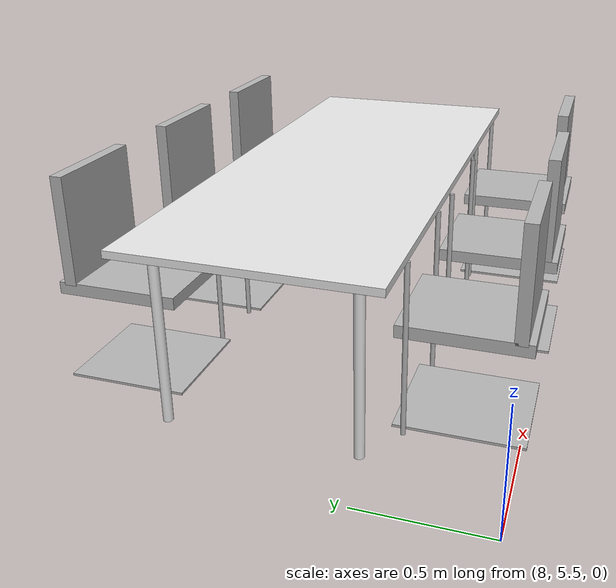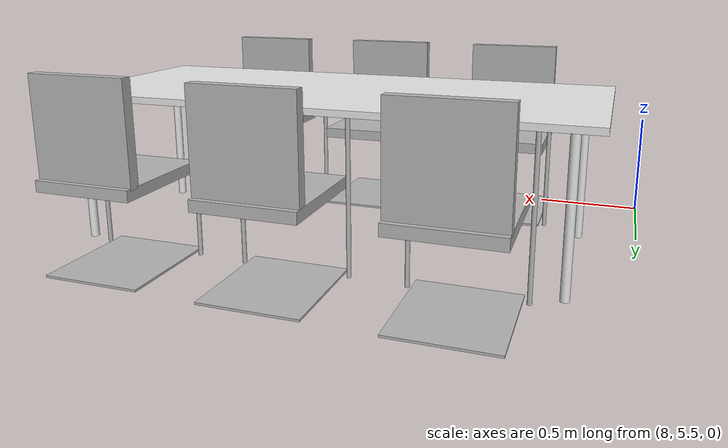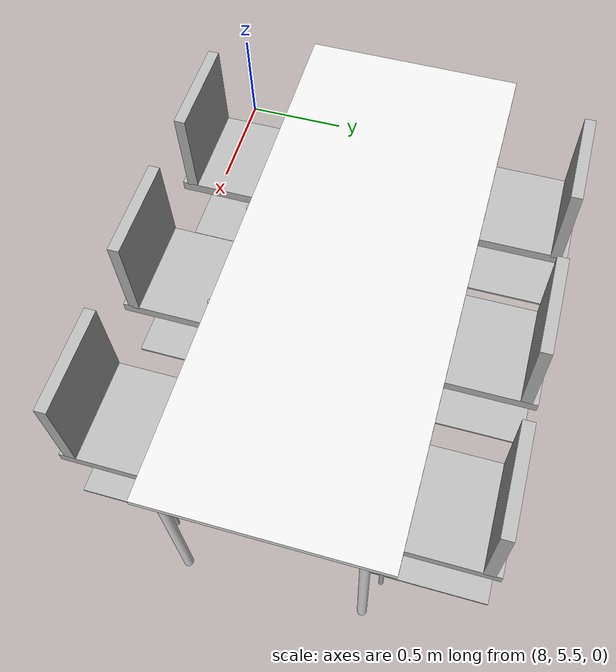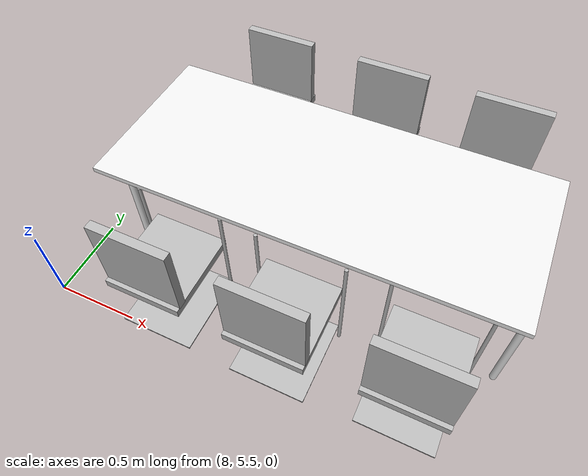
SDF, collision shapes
<sdf version="1.6">
 <model name="erica">
  <model name="table1_chair_clone">
   <model name="h_chair">
    <link name="link_0">
     <inertial>
      <mass>1</mass>
      <inertia>
       <ixx>0.166667</ixx>
       <ixy>0</ixy>
       <ixz>0</ixz>
       <iyy>0.166667</iyy>
       <iyz>0</iyz>
       <izz>0.166667</izz>
      </inertia>
     </inertial>
     <visual name="visual">
      <geometry>
       <mesh><uri>model://erica/elements/h_chair/meshes/chair.dae</uri><scale>1 1 1</scale></mesh>
      </geometry>
     </visual>
     <collision name="collision_4">
      <pose>0 0 0.41 0 -0 0</pose>
      <geometry><box><size>0.5 0.45 0.05</size></box></geometry>
      <surface>
       <friction>
        <ode><mu>1</mu><mu2>1</mu2><fdir1>0 0 0</fdir1><slip1>0</slip1><slip2>0</slip2></ode>
        <torsional>
         <coefficient>1</coefficient>
         <patch_radius>0</patch_radius>
         <surface_radius>0</surface_radius>
         <use_patch_radius>1</use_patch_radius>
         <ode><slip>0</slip></ode>
        </torsional>
       </friction>
       <bounce><restitution_coefficient>0</restitution_coefficient><threshold>1e+06</threshold></bounce>
       <contact>
        <collide_without_contact>0</collide_without_contact>
        <collide_without_contact_bitmask>1</collide_without_contact_bitmask>
        <collide_bitmask>1</collide_bitmask>
        <ode>
         <soft_cfm>0</soft_cfm>
         <soft_erp>0.2</soft_erp>
         <kp>1e+13</kp>
         <kd>1</kd>
         <max_vel>0.01</max_vel>
         <min_depth>0</min_depth>
        </ode>
        <bullet>
         <split_impulse>1</split_impulse>
         <split_impulse_penetration_threshold>-0.01</split_impulse_penetration_threshold>
         <soft_cfm>0</soft_cfm>
         <soft_erp>0.2</soft_erp>
         <kp>1e+13</kp>
         <kd>1</kd>
        </bullet>
       </contact>
      </surface>
     </collision>
     <collision name="collision_3">
      <pose>0 0 0.01 0 -0 0</pose>
      <geometry><box><size>0.5 0.45 0.01</size></box></geometry>
      <surface>
       <friction>
        <ode><mu>1</mu><mu2>1</mu2><fdir1>0 0 0</fdir1><slip1>0</slip1><slip2>0</slip2></ode>
        <torsional>
         <coefficient>1</coefficient>
         <patch_radius>0</patch_radius>
         <surface_radius>0</surface_radius>
         <use_patch_radius>1</use_patch_radius>
         <ode><slip>0</slip></ode>
        </torsional>
       </friction>
       <bounce><restitution_coefficient>0</restitution_coefficient><threshold>1e+06</threshold></bounce>
       <contact>
        <collide_without_contact>0</collide_without_contact>
        <collide_without_contact_bitmask>1</collide_without_contact_bitmask>
        <collide_bitmask>1</collide_bitmask>
        <ode>
         <soft_cfm>0</soft_cfm>
         <soft_erp>0.2</soft_erp>
         <kp>1e+13</kp>
         <kd>1</kd>
         <max_vel>0.01</max_vel>
         <min_depth>0</min_depth>
        </ode>
        <bullet>
         <split_impulse>1</split_impulse>
         <split_impulse_penetration_threshold>-0.01</split_impulse_penetration_threshold>
         <soft_cfm>0</soft_cfm>
         <soft_erp>0.2</soft_erp>
         <kp>1e+13</kp>
         <kd>1</kd>
        </bullet>
       </contact>
      </surface>
     </collision>
     <collision name="collision_5">
      <pose>-0.2 0 0.65 0 -0 0</pose>
      <geometry><box><size>0.05 0.45 0.45</size></box></geometry>
      <surface>
       <friction>
        <ode><mu>1</mu><mu2>1</mu2><fdir1>0 0 0</fdir1><slip1>0</slip1><slip2>0</slip2></ode>
        <torsional>
         <coefficient>1</coefficient>
         <patch_radius>0</patch_radius>
         <surface_radius>0</surface_radius>
         <use_patch_radius>1</use_patch_radius>
         <ode><slip>0</slip></ode>
        </torsional>
       </friction>
       <bounce><restitution_coefficient>0</restitution_coefficient><threshold>1e+06</threshold></bounce>
       <contact>
        <collide_without_contact>0</collide_without_contact>
        <collide_without_contact_bitmask>1</collide_without_contact_bitmask>
        <collide_bitmask>1</collide_bitmask>
        <ode>
         <soft_cfm>0</soft_cfm>
         <soft_erp>0.2</soft_erp>
         <kp>1e+13</kp>
         <kd>1</kd>
         <max_vel>0.01</max_vel>
         <min_depth>0</min_depth>
        </ode>
        <bullet>
         <split_impulse>1</split_impulse>
         <split_impulse_penetration_threshold>-0.01</split_impulse_penetration_threshold>
         <soft_cfm>0</soft_cfm>
         <soft_erp>0.2</soft_erp>
         <kp>1e+13</kp>
         <kd>1</kd>
        </bullet>
       </contact>
      </surface>
     </collision>
     <collision name="collision_6">
      <pose>0.2 -0.25 0.35 0 -0 0</pose>
      <geometry><cylinder><radius>0.01</radius><length>0.7</length></cylinder></geometry>
      <surface>
       <friction>
        <ode><mu>1</mu><mu2>1</mu2><fdir1>0 0 0</fdir1><slip1>0</slip1><slip2>0</slip2></ode>
        <torsional>
         <coefficient>1</coefficient>
         <patch_radius>0</patch_radius>
         <surface_radius>0</surface_radius>
         <use_patch_radius>1</use_patch_radius>
         <ode><slip>0</slip></ode>
        </torsional>
       </friction>
       <bounce><restitution_coefficient>0</restitution_coefficient><threshold>1e+06</threshold></bounce>
       <contact>
        <collide_without_contact>0</collide_without_contact>
        <collide_without_contact_bitmask>1</collide_without_contact_bitmask>
        <collide_bitmask>1</collide_bitmask>
        <ode>
         <soft_cfm>0</soft_cfm>
         <soft_erp>0.2</soft_erp>
         <kp>1e+13</kp>
         <kd>1</kd>
         <max_vel>0.01</max_vel>
         <min_depth>0</min_depth>
        </ode>
        <bullet>
         <split_impulse>1</split_impulse>
         <split_impulse_penetration_threshold>-0.01</split_impulse_penetration_threshold>
         <soft_cfm>0</soft_cfm>
         <soft_erp>0.2</soft_erp>
         <kp>1e+13</kp>
         <kd>1</kd>
        </bullet>
       </contact>
      </surface>
     </collision>
     <collision name="collision_7">
      <pose>0.2 0.25 0.35 0 -0 0</pose>
      <geometry><cylinder><radius>0.01</radius><length>0.7</length></cylinder></geometry>
      <surface>
       <friction>
        <ode><mu>1</mu><mu2>1</mu2><fdir1>0 0 0</fdir1><slip1>0</slip1><slip2>0</slip2></ode>
        <torsional>
         <coefficient>1</coefficient>
         <patch_radius>0</patch_radius>
         <surface_radius>0</surface_radius>
         <use_patch_radius>1</use_patch_radius>
         <ode><slip>0</slip></ode>
        </torsional>
       </friction>
       <bounce><restitution_coefficient>0</restitution_coefficient><threshold>1e+06</threshold></bounce>
       <contact>
        <collide_without_contact>0</collide_without_contact>
        <collide_without_contact_bitmask>1</collide_without_contact_bitmask>
        <collide_bitmask>1</collide_bitmask>
        <ode>
         <soft_cfm>0</soft_cfm>
         <soft_erp>0.2</soft_erp>
         <kp>1e+13</kp>
         <kd>1</kd>
         <max_vel>0.01</max_vel>
         <min_depth>0</min_depth>
        </ode>
        <bullet>
         <split_impulse>1</split_impulse>
         <split_impulse_penetration_threshold>-0.01</split_impulse_penetration_threshold>
         <soft_cfm>0</soft_cfm>
         <soft_erp>0.2</soft_erp>
         <kp>1e+13</kp>
         <kd>1</kd>
        </bullet>
       </contact>
      </surface>
     </collision>
    </link>
    <static>1</static>
    <pose>-0.65015 0.677818 0 0 -0 0</pose>
   </model>
   <model name="h_chair_clone">
    <link name="link_0">
     <inertial>
      <mass>1</mass>
      <inertia>
       <ixx>0.166667</ixx>
       <ixy>0</ixy>
       <ixz>0</ixz>
       <iyy>0.166667</iyy>
       <iyz>0</iyz>
       <izz>0.166667</izz>
      </inertia>
     </inertial>
     <visual name="visual">
      <geometry>
       <mesh><uri>model://erica/elements/h_chair/meshes/chair.dae</uri><scale>1 1 1</scale></mesh>
      </geometry>
     </visual>
     <collision name="collision_4">
      <pose>0 0 0.41 0 -0 0</pose>
      <geometry><box><size>0.5 0.45 0.05</size></box></geometry>
      <surface>
       <friction>
        <ode><mu>1</mu><mu2>1</mu2><fdir1>0 0 0</fdir1><slip1>0</slip1><slip2>0</slip2></ode>
        <torsional>
         <coefficient>1</coefficient>
         <patch_radius>0</patch_radius>
         <surface_radius>0</surface_radius>
         <use_patch_radius>1</use_patch_radius>
         <ode><slip>0</slip></ode>
        </torsional>
       </friction>
       <bounce><restitution_coefficient>0</restitution_coefficient><threshold>1e+06</threshold></bounce>
       <contact>
        <collide_without_contact>0</collide_without_contact>
        <collide_without_contact_bitmask>1</collide_without_contact_bitmask>
        <collide_bitmask>1</collide_bitmask>
        <ode>
         <soft_cfm>0</soft_cfm>
         <soft_erp>0.2</soft_erp>
         <kp>1e+13</kp>
         <kd>1</kd>
         <max_vel>0.01</max_vel>
         <min_depth>0</min_depth>
        </ode>
        <bullet>
         <split_impulse>1</split_impulse>
         <split_impulse_penetration_threshold>-0.01</split_impulse_penetration_threshold>
         <soft_cfm>0</soft_cfm>
         <soft_erp>0.2</soft_erp>
         <kp>1e+13</kp>
         <kd>1</kd>
        </bullet>
       </contact>
      </surface>
     </collision>
     <collision name="collision_3">
      <pose>0 0 0.01 0 -0 0</pose>
      <geometry><box><size>0.5 0.45 0.01</size></box></geometry>
      <surface>
       <friction>
        <ode><mu>1</mu><mu2>1</mu2><fdir1>0 0 0</fdir1><slip1>0</slip1><slip2>0</slip2></ode>
        <torsional>
         <coefficient>1</coefficient>
         <patch_radius>0</patch_radius>
         <surface_radius>0</surface_radius>
         <use_patch_radius>1</use_patch_radius>
         <ode><slip>0</slip></ode>
        </torsional>
       </friction>
       <bounce><restitution_coefficient>0</restitution_coefficient><threshold>1e+06</threshold></bounce>
       <contact>
        <collide_without_contact>0</collide_without_contact>
        <collide_without_contact_bitmask>1</collide_without_contact_bitmask>
        <collide_bitmask>1</collide_bitmask>
        <ode>
         <soft_cfm>0</soft_cfm>
         <soft_erp>0.2</soft_erp>
         <kp>1e+13</kp>
         <kd>1</kd>
         <max_vel>0.01</max_vel>
         <min_depth>0</min_depth>
        </ode>
        <bullet>
         <split_impulse>1</split_impulse>
         <split_impulse_penetration_threshold>-0.01</split_impulse_penetration_threshold>
         <soft_cfm>0</soft_cfm>
         <soft_erp>0.2</soft_erp>
         <kp>1e+13</kp>
         <kd>1</kd>
        </bullet>
       </contact>
      </surface>
     </collision>
     <collision name="collision_5">
      <pose>-0.2 0 0.65 0 -0 0</pose>
      <geometry><box><size>0.05 0.45 0.45</size></box></geometry>
      <surface>
       <friction>
        <ode><mu>1</mu><mu2>1</mu2><fdir1>0 0 0</fdir1><slip1>0</slip1><slip2>0</slip2></ode>
        <torsional>
         <coefficient>1</coefficient>
         <patch_radius>0</patch_radius>
         <surface_radius>0</surface_radius>
         <use_patch_radius>1</use_patch_radius>
         <ode><slip>0</slip></ode>
        </torsional>
       </friction>
       <bounce><restitution_coefficient>0</restitution_coefficient><threshold>1e+06</threshold></bounce>
       <contact>
        <collide_without_contact>0</collide_without_contact>
        <collide_without_contact_bitmask>1</collide_without_contact_bitmask>
        <collide_bitmask>1</collide_bitmask>
        <ode>
         <soft_cfm>0</soft_cfm>
         <soft_erp>0.2</soft_erp>
         <kp>1e+13</kp>
         <kd>1</kd>
         <max_vel>0.01</max_vel>
         <min_depth>0</min_depth>
        </ode>
        <bullet>
         <split_impulse>1</split_impulse>
         <split_impulse_penetration_threshold>-0.01</split_impulse_penetration_threshold>
         <soft_cfm>0</soft_cfm>
         <soft_erp>0.2</soft_erp>
         <kp>1e+13</kp>
         <kd>1</kd>
        </bullet>
       </contact>
      </surface>
     </collision>
     <collision name="collision_6">
      <pose>0.2 -0.25 0.35 0 -0 0</pose>
      <geometry><cylinder><radius>0.01</radius><length>0.7</length></cylinder></geometry>
      <surface>
       <friction>
        <ode><mu>1</mu><mu2>1</mu2><fdir1>0 0 0</fdir1><slip1>0</slip1><slip2>0</slip2></ode>
        <torsional>
         <coefficient>1</coefficient>
         <patch_radius>0</patch_radius>
         <surface_radius>0</surface_radius>
         <use_patch_radius>1</use_patch_radius>
         <ode><slip>0</slip></ode>
        </torsional>
       </friction>
       <bounce><restitution_coefficient>0</restitution_coefficient><threshold>1e+06</threshold></bounce>
       <contact>
        <collide_without_contact>0</collide_without_contact>
        <collide_without_contact_bitmask>1</collide_without_contact_bitmask>
        <collide_bitmask>1</collide_bitmask>
        <ode>
         <soft_cfm>0</soft_cfm>
         <soft_erp>0.2</soft_erp>
         <kp>1e+13</kp>
         <kd>1</kd>
         <max_vel>0.01</max_vel>
         <min_depth>0</min_depth>
        </ode>
        <bullet>
         <split_impulse>1</split_impulse>
         <split_impulse_penetration_threshold>-0.01</split_impulse_penetration_threshold>
         <soft_cfm>0</soft_cfm>
         <soft_erp>0.2</soft_erp>
         <kp>1e+13</kp>
         <kd>1</kd>
        </bullet>
       </contact>
      </surface>
     </collision>
     <collision name="collision_7">
      <pose>0.2 0.25 0.35 0 -0 0</pose>
      <geometry><cylinder><radius>0.01</radius><length>0.7</length></cylinder></geometry>
      <surface>
       <friction>
        <ode><mu>1</mu><mu2>1</mu2><fdir1>0 0 0</fdir1><slip1>0</slip1><slip2>0</slip2></ode>
        <torsional>
         <coefficient>1</coefficient>
         <patch_radius>0</patch_radius>
         <surface_radius>0</surface_radius>
         <use_patch_radius>1</use_patch_radius>
         <ode><slip>0</slip></ode>
        </torsional>
       </friction>
       <bounce><restitution_coefficient>0</restitution_coefficient><threshold>1e+06</threshold></bounce>
       <contact>
        <collide_without_contact>0</collide_without_contact>
        <collide_without_contact_bitmask>1</collide_without_contact_bitmask>
        <collide_bitmask>1</collide_bitmask>
        <ode>
         <soft_cfm>0</soft_cfm>
         <soft_erp>0.2</soft_erp>
         <kp>1e+13</kp>
         <kd>1</kd>
         <max_vel>0.01</max_vel>
         <min_depth>0</min_depth>
        </ode>
        <bullet>
         <split_impulse>1</split_impulse>
         <split_impulse_penetration_threshold>-0.01</split_impulse_penetration_threshold>
         <soft_cfm>0</soft_cfm>
         <soft_erp>0.2</soft_erp>
         <kp>1e+13</kp>
         <kd>1</kd>
        </bullet>
       </contact>
      </surface>
     </collision>
    </link>
    <static>1</static>
    <pose>-0.668032 -0.060178 0 0 -0 0</pose>
   </model>
   <model name="h_chair_clone_0">
    <link name="link_0">
     <inertial>
      <mass>1</mass>
      <inertia>
       <ixx>0.166667</ixx>
       <ixy>0</ixy>
       <ixz>0</ixz>
       <iyy>0.166667</iyy>
       <iyz>0</iyz>
       <izz>0.166667</izz>
      </inertia>
     </inertial>
     <visual name="visual">
      <geometry>
       <mesh><uri>model://erica/elements/h_chair/meshes/chair.dae</uri><scale>1 1 1</scale></mesh>
      </geometry>
     </visual>
     <collision name="collision_4">
      <pose>0 0 0.41 0 -0 0</pose>
      <geometry><box><size>0.5 0.45 0.05</size></box></geometry>
      <surface>
       <friction>
        <ode><mu>1</mu><mu2>1</mu2><fdir1>0 0 0</fdir1><slip1>0</slip1><slip2>0</slip2></ode>
        <torsional>
         <coefficient>1</coefficient>
         <patch_radius>0</patch_radius>
         <surface_radius>0</surface_radius>
         <use_patch_radius>1</use_patch_radius>
         <ode><slip>0</slip></ode>
        </torsional>
       </friction>
       <bounce><restitution_coefficient>0</restitution_coefficient><threshold>1e+06</threshold></bounce>
       <contact>
        <collide_without_contact>0</collide_without_contact>
        <collide_without_contact_bitmask>1</collide_without_contact_bitmask>
        <collide_bitmask>1</collide_bitmask>
        <ode>
         <soft_cfm>0</soft_cfm>
         <soft_erp>0.2</soft_erp>
         <kp>1e+13</kp>
         <kd>1</kd>
         <max_vel>0.01</max_vel>
         <min_depth>0</min_depth>
        </ode>
        <bullet>
         <split_impulse>1</split_impulse>
         <split_impulse_penetration_threshold>-0.01</split_impulse_penetration_threshold>
         <soft_cfm>0</soft_cfm>
         <soft_erp>0.2</soft_erp>
         <kp>1e+13</kp>
         <kd>1</kd>
        </bullet>
       </contact>
      </surface>
     </collision>
     <collision name="collision_3">
      <pose>0 0 0.01 0 -0 0</pose>
      <geometry><box><size>0.5 0.45 0.01</size></box></geometry>
      <surface>
       <friction>
        <ode><mu>1</mu><mu2>1</mu2><fdir1>0 0 0</fdir1><slip1>0</slip1><slip2>0</slip2></ode>
        <torsional>
         <coefficient>1</coefficient>
         <patch_radius>0</patch_radius>
         <surface_radius>0</surface_radius>
         <use_patch_radius>1</use_patch_radius>
         <ode><slip>0</slip></ode>
        </torsional>
       </friction>
       <bounce><restitution_coefficient>0</restitution_coefficient><threshold>1e+06</threshold></bounce>
       <contact>
        <collide_without_contact>0</collide_without_contact>
        <collide_without_contact_bitmask>1</collide_without_contact_bitmask>
        <collide_bitmask>1</collide_bitmask>
        <ode>
         <soft_cfm>0</soft_cfm>
         <soft_erp>0.2</soft_erp>
         <kp>1e+13</kp>
         <kd>1</kd>
         <max_vel>0.01</max_vel>
         <min_depth>0</min_depth>
        </ode>
        <bullet>
         <split_impulse>1</split_impulse>
         <split_impulse_penetration_threshold>-0.01</split_impulse_penetration_threshold>
         <soft_cfm>0</soft_cfm>
         <soft_erp>0.2</soft_erp>
         <kp>1e+13</kp>
         <kd>1</kd>
        </bullet>
       </contact>
      </surface>
     </collision>
     <collision name="collision_5">
      <pose>-0.2 0 0.65 0 -0 0</pose>
      <geometry><box><size>0.05 0.45 0.45</size></box></geometry>
      <surface>
       <friction>
        <ode><mu>1</mu><mu2>1</mu2><fdir1>0 0 0</fdir1><slip1>0</slip1><slip2>0</slip2></ode>
        <torsional>
         <coefficient>1</coefficient>
         <patch_radius>0</patch_radius>
         <surface_radius>0</surface_radius>
         <use_patch_radius>1</use_patch_radius>
         <ode><slip>0</slip></ode>
        </torsional>
       </friction>
       <bounce><restitution_coefficient>0</restitution_coefficient><threshold>1e+06</threshold></bounce>
       <contact>
        <collide_without_contact>0</collide_without_contact>
        <collide_without_contact_bitmask>1</collide_without_contact_bitmask>
        <collide_bitmask>1</collide_bitmask>
        <ode>
         <soft_cfm>0</soft_cfm>
         <soft_erp>0.2</soft_erp>
         <kp>1e+13</kp>
         <kd>1</kd>
         <max_vel>0.01</max_vel>
         <min_depth>0</min_depth>
        </ode>
        <bullet>
         <split_impulse>1</split_impulse>
         <split_impulse_penetration_threshold>-0.01</split_impulse_penetration_threshold>
         <soft_cfm>0</soft_cfm>
         <soft_erp>0.2</soft_erp>
         <kp>1e+13</kp>
         <kd>1</kd>
        </bullet>
       </contact>
      </surface>
     </collision>
     <collision name="collision_6">
      <pose>0.2 -0.25 0.35 0 -0 0</pose>
      <geometry><cylinder><radius>0.01</radius><length>0.7</length></cylinder></geometry>
      <surface>
       <friction>
        <ode><mu>1</mu><mu2>1</mu2><fdir1>0 0 0</fdir1><slip1>0</slip1><slip2>0</slip2></ode>
        <torsional>
         <coefficient>1</coefficient>
         <patch_radius>0</patch_radius>
         <surface_radius>0</surface_radius>
         <use_patch_radius>1</use_patch_radius>
         <ode><slip>0</slip></ode>
        </torsional>
       </friction>
       <bounce><restitution_coefficient>0</restitution_coefficient><threshold>1e+06</threshold></bounce>
       <contact>
        <collide_without_contact>0</collide_without_contact>
        <collide_without_contact_bitmask>1</collide_without_contact_bitmask>
        <collide_bitmask>1</collide_bitmask>
        <ode>
         <soft_cfm>0</soft_cfm>
         <soft_erp>0.2</soft_erp>
         <kp>1e+13</kp>
         <kd>1</kd>
         <max_vel>0.01</max_vel>
         <min_depth>0</min_depth>
        </ode>
        <bullet>
         <split_impulse>1</split_impulse>
         <split_impulse_penetration_threshold>-0.01</split_impulse_penetration_threshold>
         <soft_cfm>0</soft_cfm>
         <soft_erp>0.2</soft_erp>
         <kp>1e+13</kp>
         <kd>1</kd>
        </bullet>
       </contact>
      </surface>
     </collision>
     <collision name="collision_7">
      <pose>0.2 0.25 0.35 0 -0 0</pose>
      <geometry><cylinder><radius>0.01</radius><length>0.7</length></cylinder></geometry>
      <surface>
       <friction>
        <ode><mu>1</mu><mu2>1</mu2><fdir1>0 0 0</fdir1><slip1>0</slip1><slip2>0</slip2></ode>
        <torsional>
         <coefficient>1</coefficient>
         <patch_radius>0</patch_radius>
         <surface_radius>0</surface_radius>
         <use_patch_radius>1</use_patch_radius>
         <ode><slip>0</slip></ode>
        </torsional>
       </friction>
       <bounce><restitution_coefficient>0</restitution_coefficient><threshold>1e+06</threshold></bounce>
       <contact>
        <collide_without_contact>0</collide_without_contact>
        <collide_without_contact_bitmask>1</collide_without_contact_bitmask>
        <collide_bitmask>1</collide_bitmask>
        <ode>
         <soft_cfm>0</soft_cfm>
         <soft_erp>0.2</soft_erp>
         <kp>1e+13</kp>
         <kd>1</kd>
         <max_vel>0.01</max_vel>
         <min_depth>0</min_depth>
        </ode>
        <bullet>
         <split_impulse>1</split_impulse>
         <split_impulse_penetration_threshold>-0.01</split_impulse_penetration_threshold>
         <soft_cfm>0</soft_cfm>
         <soft_erp>0.2</soft_erp>
         <kp>1e+13</kp>
         <kd>1</kd>
        </bullet>
       </contact>
      </surface>
     </collision>
    </link>
    <static>1</static>
    <pose>-0.679941 -0.822301 0 0 -0 0</pose>
   </model>
   <model name="h_chair_clone_1">
    <link name="link_0">
     <inertial>
      <mass>1</mass>
      <inertia>
       <ixx>0.166667</ixx>
       <ixy>0</ixy>
       <ixz>0</ixz>
       <iyy>0.166667</iyy>
       <iyz>0</iyz>
       <izz>0.166667</izz>
      </inertia>
     </inertial>
     <visual name="visual">
      <geometry>
       <mesh><uri>model://erica/elements/h_chair/meshes/chair.dae</uri><scale>1 1 1</scale></mesh>
      </geometry>
     </visual>
     <collision name="collision_4">
      <pose>0 0 0.41 0 -0 0</pose>
      <geometry><box><size>0.5 0.45 0.05</size></box></geometry>
      <surface>
       <friction>
        <ode><mu>1</mu><mu2>1</mu2><fdir1>0 0 0</fdir1><slip1>0</slip1><slip2>0</slip2></ode>
        <torsional>
         <coefficient>1</coefficient>
         <patch_radius>0</patch_radius>
         <surface_radius>0</surface_radius>
         <use_patch_radius>1</use_patch_radius>
         <ode><slip>0</slip></ode>
        </torsional>
       </friction>
       <bounce><restitution_coefficient>0</restitution_coefficient><threshold>1e+06</threshold></bounce>
       <contact>
        <collide_without_contact>0</collide_without_contact>
        <collide_without_contact_bitmask>1</collide_without_contact_bitmask>
        <collide_bitmask>1</collide_bitmask>
        <ode>
         <soft_cfm>0</soft_cfm>
         <soft_erp>0.2</soft_erp>
         <kp>1e+13</kp>
         <kd>1</kd>
         <max_vel>0.01</max_vel>
         <min_depth>0</min_depth>
        </ode>
        <bullet>
         <split_impulse>1</split_impulse>
         <split_impulse_penetration_threshold>-0.01</split_impulse_penetration_threshold>
         <soft_cfm>0</soft_cfm>
         <soft_erp>0.2</soft_erp>
         <kp>1e+13</kp>
         <kd>1</kd>
        </bullet>
       </contact>
      </surface>
     </collision>
     <collision name="collision_3">
      <pose>0 0 0.01 0 -0 0</pose>
      <geometry><box><size>0.5 0.45 0.01</size></box></geometry>
      <surface>
       <friction>
        <ode><mu>1</mu><mu2>1</mu2><fdir1>0 0 0</fdir1><slip1>0</slip1><slip2>0</slip2></ode>
        <torsional>
         <coefficient>1</coefficient>
         <patch_radius>0</patch_radius>
         <surface_radius>0</surface_radius>
         <use_patch_radius>1</use_patch_radius>
         <ode><slip>0</slip></ode>
        </torsional>
       </friction>
       <bounce><restitution_coefficient>0</restitution_coefficient><threshold>1e+06</threshold></bounce>
       <contact>
        <collide_without_contact>0</collide_without_contact>
        <collide_without_contact_bitmask>1</collide_without_contact_bitmask>
        <collide_bitmask>1</collide_bitmask>
        <ode>
         <soft_cfm>0</soft_cfm>
         <soft_erp>0.2</soft_erp>
         <kp>1e+13</kp>
         <kd>1</kd>
         <max_vel>0.01</max_vel>
         <min_depth>0</min_depth>
        </ode>
        <bullet>
         <split_impulse>1</split_impulse>
         <split_impulse_penetration_threshold>-0.01</split_impulse_penetration_threshold>
         <soft_cfm>0</soft_cfm>
         <soft_erp>0.2</soft_erp>
         <kp>1e+13</kp>
         <kd>1</kd>
        </bullet>
       </contact>
      </surface>
     </collision>
     <collision name="collision_5">
      <pose>-0.2 0 0.65 0 -0 0</pose>
      <geometry><box><size>0.05 0.45 0.45</size></box></geometry>
      <surface>
       <friction>
        <ode><mu>1</mu><mu2>1</mu2><fdir1>0 0 0</fdir1><slip1>0</slip1><slip2>0</slip2></ode>
        <torsional>
         <coefficient>1</coefficient>
         <patch_radius>0</patch_radius>
         <surface_radius>0</surface_radius>
         <use_patch_radius>1</use_patch_radius>
         <ode><slip>0</slip></ode>
        </torsional>
       </friction>
       <bounce><restitution_coefficient>0</restitution_coefficient><threshold>1e+06</threshold></bounce>
       <contact>
        <collide_without_contact>0</collide_without_contact>
        <collide_without_contact_bitmask>1</collide_without_contact_bitmask>
        <collide_bitmask>1</collide_bitmask>
        <ode>
         <soft_cfm>0</soft_cfm>
         <soft_erp>0.2</soft_erp>
         <kp>1e+13</kp>
         <kd>1</kd>
         <max_vel>0.01</max_vel>
         <min_depth>0</min_depth>
        </ode>
        <bullet>
         <split_impulse>1</split_impulse>
         <split_impulse_penetration_threshold>-0.01</split_impulse_penetration_threshold>
         <soft_cfm>0</soft_cfm>
         <soft_erp>0.2</soft_erp>
         <kp>1e+13</kp>
         <kd>1</kd>
        </bullet>
       </contact>
      </surface>
     </collision>
     <collision name="collision_6">
      <pose>0.2 -0.25 0.35 0 -0 0</pose>
      <geometry><cylinder><radius>0.01</radius><length>0.7</length></cylinder></geometry>
      <surface>
       <friction>
        <ode><mu>1</mu><mu2>1</mu2><fdir1>0 0 0</fdir1><slip1>0</slip1><slip2>0</slip2></ode>
        <torsional>
         <coefficient>1</coefficient>
         <patch_radius>0</patch_radius>
         <surface_radius>0</surface_radius>
         <use_patch_radius>1</use_patch_radius>
         <ode><slip>0</slip></ode>
        </torsional>
       </friction>
       <bounce><restitution_coefficient>0</restitution_coefficient><threshold>1e+06</threshold></bounce>
       <contact>
        <collide_without_contact>0</collide_without_contact>
        <collide_without_contact_bitmask>1</collide_without_contact_bitmask>
        <collide_bitmask>1</collide_bitmask>
        <ode>
         <soft_cfm>0</soft_cfm>
         <soft_erp>0.2</soft_erp>
         <kp>1e+13</kp>
         <kd>1</kd>
         <max_vel>0.01</max_vel>
         <min_depth>0</min_depth>
        </ode>
        <bullet>
         <split_impulse>1</split_impulse>
         <split_impulse_penetration_threshold>-0.01</split_impulse_penetration_threshold>
         <soft_cfm>0</soft_cfm>
         <soft_erp>0.2</soft_erp>
         <kp>1e+13</kp>
         <kd>1</kd>
        </bullet>
       </contact>
      </surface>
     </collision>
     <collision name="collision_7">
      <pose>0.2 0.25 0.35 0 -0 0</pose>
      <geometry><cylinder><radius>0.01</radius><length>0.7</length></cylinder></geometry>
      <surface>
       <friction>
        <ode><mu>1</mu><mu2>1</mu2><fdir1>0 0 0</fdir1><slip1>0</slip1><slip2>0</slip2></ode>
        <torsional>
         <coefficient>1</coefficient>
         <patch_radius>0</patch_radius>
         <surface_radius>0</surface_radius>
         <use_patch_radius>1</use_patch_radius>
         <ode><slip>0</slip></ode>
        </torsional>
       </friction>
       <bounce><restitution_coefficient>0</restitution_coefficient><threshold>1e+06</threshold></bounce>
       <contact>
        <collide_without_contact>0</collide_without_contact>
        <collide_without_contact_bitmask>1</collide_without_contact_bitmask>
        <collide_bitmask>1</collide_bitmask>
        <ode>
         <soft_cfm>0</soft_cfm>
         <soft_erp>0.2</soft_erp>
         <kp>1e+13</kp>
         <kd>1</kd>
         <max_vel>0.01</max_vel>
         <min_depth>0</min_depth>
        </ode>
        <bullet>
         <split_impulse>1</split_impulse>
         <split_impulse_penetration_threshold>-0.01</split_impulse_penetration_threshold>
         <soft_cfm>0</soft_cfm>
         <soft_erp>0.2</soft_erp>
         <kp>1e+13</kp>
         <kd>1</kd>
        </bullet>
       </contact>
      </surface>
     </collision>
    </link>
    <static>1</static>
    <pose>0.664034 0.665185 0 0 -0 3.13853</pose>
   </model>
   <model name="h_chair_clone_1_clone">
    <link name="link_0">
     <inertial>
      <mass>1</mass>
      <inertia>
       <ixx>0.166667</ixx>
       <ixy>0</ixy>
       <ixz>0</ixz>
       <iyy>0.166667</iyy>
       <iyz>0</iyz>
       <izz>0.166667</izz>
      </inertia>
     </inertial>
     <visual name="visual">
      <geometry>
       <mesh><uri>model://erica/elements/h_chair/meshes/chair.dae</uri><scale>1 1 1</scale></mesh>
      </geometry>
     </visual>
     <collision name="collision_4">
      <pose>0 0 0.41 0 -0 0</pose>
      <geometry><box><size>0.5 0.45 0.05</size></box></geometry>
      <surface>
       <friction>
        <ode><mu>1</mu><mu2>1</mu2><fdir1>0 0 0</fdir1><slip1>0</slip1><slip2>0</slip2></ode>
        <torsional>
         <coefficient>1</coefficient>
         <patch_radius>0</patch_radius>
         <surface_radius>0</surface_radius>
         <use_patch_radius>1</use_patch_radius>
         <ode><slip>0</slip></ode>
        </torsional>
       </friction>
       <bounce><restitution_coefficient>0</restitution_coefficient><threshold>1e+06</threshold></bounce>
       <contact>
        <collide_without_contact>0</collide_without_contact>
        <collide_without_contact_bitmask>1</collide_without_contact_bitmask>
        <collide_bitmask>1</collide_bitmask>
        <ode>
         <soft_cfm>0</soft_cfm>
         <soft_erp>0.2</soft_erp>
         <kp>1e+13</kp>
         <kd>1</kd>
         <max_vel>0.01</max_vel>
         <min_depth>0</min_depth>
        </ode>
        <bullet>
         <split_impulse>1</split_impulse>
         <split_impulse_penetration_threshold>-0.01</split_impulse_penetration_threshold>
         <soft_cfm>0</soft_cfm>
         <soft_erp>0.2</soft_erp>
         <kp>1e+13</kp>
         <kd>1</kd>
        </bullet>
       </contact>
      </surface>
     </collision>
     <collision name="collision_3">
      <pose>0 0 0.01 0 -0 0</pose>
      <geometry><box><size>0.5 0.45 0.01</size></box></geometry>
      <surface>
       <friction>
        <ode><mu>1</mu><mu2>1</mu2><fdir1>0 0 0</fdir1><slip1>0</slip1><slip2>0</slip2></ode>
        <torsional>
         <coefficient>1</coefficient>
         <patch_radius>0</patch_radius>
         <surface_radius>0</surface_radius>
         <use_patch_radius>1</use_patch_radius>
         <ode><slip>0</slip></ode>
        </torsional>
       </friction>
       <bounce><restitution_coefficient>0</restitution_coefficient><threshold>1e+06</threshold></bounce>
       <contact>
        <collide_without_contact>0</collide_without_contact>
        <collide_without_contact_bitmask>1</collide_without_contact_bitmask>
        <collide_bitmask>1</collide_bitmask>
        <ode>
         <soft_cfm>0</soft_cfm>
         <soft_erp>0.2</soft_erp>
         <kp>1e+13</kp>
         <kd>1</kd>
         <max_vel>0.01</max_vel>
         <min_depth>0</min_depth>
        </ode>
        <bullet>
         <split_impulse>1</split_impulse>
         <split_impulse_penetration_threshold>-0.01</split_impulse_penetration_threshold>
         <soft_cfm>0</soft_cfm>
         <soft_erp>0.2</soft_erp>
         <kp>1e+13</kp>
         <kd>1</kd>
        </bullet>
       </contact>
      </surface>
     </collision>
     <collision name="collision_5">
      <pose>-0.2 0 0.65 0 -0 0</pose>
      <geometry><box><size>0.05 0.45 0.45</size></box></geometry>
      <surface>
       <friction>
        <ode><mu>1</mu><mu2>1</mu2><fdir1>0 0 0</fdir1><slip1>0</slip1><slip2>0</slip2></ode>
        <torsional>
         <coefficient>1</coefficient>
         <patch_radius>0</patch_radius>
         <surface_radius>0</surface_radius>
         <use_patch_radius>1</use_patch_radius>
         <ode><slip>0</slip></ode>
        </torsional>
       </friction>
       <bounce><restitution_coefficient>0</restitution_coefficient><threshold>1e+06</threshold></bounce>
       <contact>
        <collide_without_contact>0</collide_without_contact>
        <collide_without_contact_bitmask>1</collide_without_contact_bitmask>
        <collide_bitmask>1</collide_bitmask>
        <ode>
         <soft_cfm>0</soft_cfm>
         <soft_erp>0.2</soft_erp>
         <kp>1e+13</kp>
         <kd>1</kd>
         <max_vel>0.01</max_vel>
         <min_depth>0</min_depth>
        </ode>
        <bullet>
         <split_impulse>1</split_impulse>
         <split_impulse_penetration_threshold>-0.01</split_impulse_penetration_threshold>
         <soft_cfm>0</soft_cfm>
         <soft_erp>0.2</soft_erp>
         <kp>1e+13</kp>
         <kd>1</kd>
        </bullet>
       </contact>
      </surface>
     </collision>
     <collision name="collision_6">
      <pose>0.2 -0.25 0.35 0 -0 0</pose>
      <geometry><cylinder><radius>0.01</radius><length>0.7</length></cylinder></geometry>
      <surface>
       <friction>
        <ode><mu>1</mu><mu2>1</mu2><fdir1>0 0 0</fdir1><slip1>0</slip1><slip2>0</slip2></ode>
        <torsional>
         <coefficient>1</coefficient>
         <patch_radius>0</patch_radius>
         <surface_radius>0</surface_radius>
         <use_patch_radius>1</use_patch_radius>
         <ode><slip>0</slip></ode>
        </torsional>
       </friction>
       <bounce><restitution_coefficient>0</restitution_coefficient><threshold>1e+06</threshold></bounce>
       <contact>
        <collide_without_contact>0</collide_without_contact>
        <collide_without_contact_bitmask>1</collide_without_contact_bitmask>
        <collide_bitmask>1</collide_bitmask>
        <ode>
         <soft_cfm>0</soft_cfm>
         <soft_erp>0.2</soft_erp>
         <kp>1e+13</kp>
         <kd>1</kd>
         <max_vel>0.01</max_vel>
         <min_depth>0</min_depth>
        </ode>
        <bullet>
         <split_impulse>1</split_impulse>
         <split_impulse_penetration_threshold>-0.01</split_impulse_penetration_threshold>
         <soft_cfm>0</soft_cfm>
         <soft_erp>0.2</soft_erp>
         <kp>1e+13</kp>
         <kd>1</kd>
        </bullet>
       </contact>
      </surface>
     </collision>
     <collision name="collision_7">
      <pose>0.2 0.25 0.35 0 -0 0</pose>
      <geometry><cylinder><radius>0.01</radius><length>0.7</length></cylinder></geometry>
      <surface>
       <friction>
        <ode><mu>1</mu><mu2>1</mu2><fdir1>0 0 0</fdir1><slip1>0</slip1><slip2>0</slip2></ode>
        <torsional>
         <coefficient>1</coefficient>
         <patch_radius>0</patch_radius>
         <surface_radius>0</surface_radius>
         <use_patch_radius>1</use_patch_radius>
         <ode><slip>0</slip></ode>
        </torsional>
       </friction>
       <bounce><restitution_coefficient>0</restitution_coefficient><threshold>1e+06</threshold></bounce>
       <contact>
        <collide_without_contact>0</collide_without_contact>
        <collide_without_contact_bitmask>1</collide_without_contact_bitmask>
        <collide_bitmask>1</collide_bitmask>
        <ode>
         <soft_cfm>0</soft_cfm>
         <soft_erp>0.2</soft_erp>
         <kp>1e+13</kp>
         <kd>1</kd>
         <max_vel>0.01</max_vel>
         <min_depth>0</min_depth>
        </ode>
        <bullet>
         <split_impulse>1</split_impulse>
         <split_impulse_penetration_threshold>-0.01</split_impulse_penetration_threshold>
         <soft_cfm>0</soft_cfm>
         <soft_erp>0.2</soft_erp>
         <kp>1e+13</kp>
         <kd>1</kd>
        </bullet>
       </contact>
      </surface>
     </collision>
    </link>
    <static>1</static>
    <pose>0.671484 -0.777358 0 0 -0 3.13853</pose>
   </model>
   <model name="h_chair_clone_1_clone_clone">
    <link name="link_0">
     <inertial>
      <mass>1</mass>
      <inertia>
       <ixx>0.166667</ixx>
       <ixy>0</ixy>
       <ixz>0</ixz>
       <iyy>0.166667</iyy>
       <iyz>0</iyz>
       <izz>0.166667</izz>
      </inertia>
     </inertial>
     <visual name="visual">
      <geometry>
       <mesh><uri>model://erica/elements/h_chair/meshes/chair.dae</uri><scale>1 1 1</scale></mesh>
      </geometry>
     </visual>
     <collision name="collision_4">
      <pose>0 0 0.41 0 -0 0</pose>
      <geometry><box><size>0.5 0.45 0.05</size></box></geometry>
      <surface>
       <friction>
        <ode><mu>1</mu><mu2>1</mu2><fdir1>0 0 0</fdir1><slip1>0</slip1><slip2>0</slip2></ode>
        <torsional>
         <coefficient>1</coefficient>
         <patch_radius>0</patch_radius>
         <surface_radius>0</surface_radius>
         <use_patch_radius>1</use_patch_radius>
         <ode><slip>0</slip></ode>
        </torsional>
       </friction>
       <bounce><restitution_coefficient>0</restitution_coefficient><threshold>1e+06</threshold></bounce>
       <contact>
        <collide_without_contact>0</collide_without_contact>
        <collide_without_contact_bitmask>1</collide_without_contact_bitmask>
        <collide_bitmask>1</collide_bitmask>
        <ode>
         <soft_cfm>0</soft_cfm>
         <soft_erp>0.2</soft_erp>
         <kp>1e+13</kp>
         <kd>1</kd>
         <max_vel>0.01</max_vel>
         <min_depth>0</min_depth>
        </ode>
        <bullet>
         <split_impulse>1</split_impulse>
         <split_impulse_penetration_threshold>-0.01</split_impulse_penetration_threshold>
         <soft_cfm>0</soft_cfm>
         <soft_erp>0.2</soft_erp>
         <kp>1e+13</kp>
         <kd>1</kd>
        </bullet>
       </contact>
      </surface>
     </collision>
     <collision name="collision_3">
      <pose>0 0 0.01 0 -0 0</pose>
      <geometry><box><size>0.5 0.45 0.01</size></box></geometry>
      <surface>
       <friction>
        <ode><mu>1</mu><mu2>1</mu2><fdir1>0 0 0</fdir1><slip1>0</slip1><slip2>0</slip2></ode>
        <torsional>
         <coefficient>1</coefficient>
         <patch_radius>0</patch_radius>
         <surface_radius>0</surface_radius>
         <use_patch_radius>1</use_patch_radius>
         <ode><slip>0</slip></ode>
        </torsional>
       </friction>
       <bounce><restitution_coefficient>0</restitution_coefficient><threshold>1e+06</threshold></bounce>
       <contact>
        <collide_without_contact>0</collide_without_contact>
        <collide_without_contact_bitmask>1</collide_without_contact_bitmask>
        <collide_bitmask>1</collide_bitmask>
        <ode>
         <soft_cfm>0</soft_cfm>
         <soft_erp>0.2</soft_erp>
         <kp>1e+13</kp>
         <kd>1</kd>
         <max_vel>0.01</max_vel>
         <min_depth>0</min_depth>
        </ode>
        <bullet>
         <split_impulse>1</split_impulse>
         <split_impulse_penetration_threshold>-0.01</split_impulse_penetration_threshold>
         <soft_cfm>0</soft_cfm>
         <soft_erp>0.2</soft_erp>
         <kp>1e+13</kp>
         <kd>1</kd>
        </bullet>
       </contact>
      </surface>
     </collision>
     <collision name="collision_5">
      <pose>-0.2 0 0.65 0 -0 0</pose>
      <geometry><box><size>0.05 0.45 0.45</size></box></geometry>
      <surface>
       <friction>
        <ode><mu>1</mu><mu2>1</mu2><fdir1>0 0 0</fdir1><slip1>0</slip1><slip2>0</slip2></ode>
        <torsional>
         <coefficient>1</coefficient>
         <patch_radius>0</patch_radius>
         <surface_radius>0</surface_radius>
         <use_patch_radius>1</use_patch_radius>
         <ode><slip>0</slip></ode>
        </torsional>
       </friction>
       <bounce><restitution_coefficient>0</restitution_coefficient><threshold>1e+06</threshold></bounce>
       <contact>
        <collide_without_contact>0</collide_without_contact>
        <collide_without_contact_bitmask>1</collide_without_contact_bitmask>
        <collide_bitmask>1</collide_bitmask>
        <ode>
         <soft_cfm>0</soft_cfm>
         <soft_erp>0.2</soft_erp>
         <kp>1e+13</kp>
         <kd>1</kd>
         <max_vel>0.01</max_vel>
         <min_depth>0</min_depth>
        </ode>
        <bullet>
         <split_impulse>1</split_impulse>
         <split_impulse_penetration_threshold>-0.01</split_impulse_penetration_threshold>
         <soft_cfm>0</soft_cfm>
         <soft_erp>0.2</soft_erp>
         <kp>1e+13</kp>
         <kd>1</kd>
        </bullet>
       </contact>
      </surface>
     </collision>
     <collision name="collision_6">
      <pose>0.2 -0.25 0.35 0 -0 0</pose>
      <geometry><cylinder><radius>0.01</radius><length>0.7</length></cylinder></geometry>
      <surface>
       <friction>
        <ode><mu>1</mu><mu2>1</mu2><fdir1>0 0 0</fdir1><slip1>0</slip1><slip2>0</slip2></ode>
        <torsional>
         <coefficient>1</coefficient>
         <patch_radius>0</patch_radius>
         <surface_radius>0</surface_radius>
         <use_patch_radius>1</use_patch_radius>
         <ode><slip>0</slip></ode>
        </torsional>
       </friction>
       <bounce><restitution_coefficient>0</restitution_coefficient><threshold>1e+06</threshold></bounce>
       <contact>
        <collide_without_contact>0</collide_without_contact>
        <collide_without_contact_bitmask>1</collide_without_contact_bitmask>
        <collide_bitmask>1</collide_bitmask>
        <ode>
         <soft_cfm>0</soft_cfm>
         <soft_erp>0.2</soft_erp>
         <kp>1e+13</kp>
         <kd>1</kd>
         <max_vel>0.01</max_vel>
         <min_depth>0</min_depth>
        </ode>
        <bullet>
         <split_impulse>1</split_impulse>
         <split_impulse_penetration_threshold>-0.01</split_impulse_penetration_threshold>
         <soft_cfm>0</soft_cfm>
         <soft_erp>0.2</soft_erp>
         <kp>1e+13</kp>
         <kd>1</kd>
        </bullet>
       </contact>
      </surface>
     </collision>
     <collision name="collision_7">
      <pose>0.2 0.25 0.35 0 -0 0</pose>
      <geometry><cylinder><radius>0.01</radius><length>0.7</length></cylinder></geometry>
      <surface>
       <friction>
        <ode><mu>1</mu><mu2>1</mu2><fdir1>0 0 0</fdir1><slip1>0</slip1><slip2>0</slip2></ode>
        <torsional>
         <coefficient>1</coefficient>
         <patch_radius>0</patch_radius>
         <surface_radius>0</surface_radius>
         <use_patch_radius>1</use_patch_radius>
         <ode><slip>0</slip></ode>
        </torsional>
       </friction>
       <bounce><restitution_coefficient>0</restitution_coefficient><threshold>1e+06</threshold></bounce>
       <contact>
        <collide_without_contact>0</collide_without_contact>
        <collide_without_contact_bitmask>1</collide_without_contact_bitmask>
        <collide_bitmask>1</collide_bitmask>
        <ode>
         <soft_cfm>0</soft_cfm>
         <soft_erp>0.2</soft_erp>
         <kp>1e+13</kp>
         <kd>1</kd>
         <max_vel>0.01</max_vel>
         <min_depth>0</min_depth>
        </ode>
        <bullet>
         <split_impulse>1</split_impulse>
         <split_impulse_penetration_threshold>-0.01</split_impulse_penetration_threshold>
         <soft_cfm>0</soft_cfm>
         <soft_erp>0.2</soft_erp>
         <kp>1e+13</kp>
         <kd>1</kd>
        </bullet>
       </contact>
      </surface>
     </collision>
    </link>
    <static>1</static>
    <pose>0.685434 -0.0617 0 0 -0 3.13853</pose>
   </model>
   <model name="h_table">
    <link name="link">
     <inertial>
      <inertia><ixx>1</ixx><ixy>0</ixy><ixz>0</ixz><iyy>1</iyy><iyz>0</iyz><izz>1</izz></inertia>
      <mass>1</mass>
     </inertial>
     <visual name="visual1">
      <pose>-0.5 0 0.72 0 -0 0</pose>
      <geometry><box><size>2.4 1 0.04</size></box></geometry>
      <material>
       <script><uri>file://media/materials/scripts/gazebo.material</uri><name>Gazebo/White</name></script>
       <ambient>1 1 1 1</ambient>
       <diffuse>1 1 1 1</diffuse>
       <specular>0.2 0.2 0.2 1</specular>
       <emissive>0 0 0 1</emissive>
       <shader type="vertex"><normal_map>__default__</normal_map></shader>
      </material>
     </visual>
     <visual name="front_right_leg">
      <pose>0.68 -0.38 0.36 0 -0 0</pose>
      <geometry><cylinder><radius>0.02</radius><length>0.72</length></cylinder></geometry>
      <material>
       <script><uri>file://media/materials/scripts/gazebo.material</uri><name>Gazebo/White</name></script>
       <ambient>0.3 0.3 0.3 1</ambient>
       <diffuse>0.7 0.7 0.7 1</diffuse>
       <specular>0.01 0.01 0.01 1</specular>
       <emissive>0 0 0 1</emissive>
       <shader type="vertex"><normal_map>__default__</normal_map></shader>
      </material>
     </visual>
     <visual name="back_left_leg">
      <pose>-1.58 0.38 0.36 0 -0 0</pose>
      <geometry><cylinder><radius>0.02</radius><length>0.72</length></cylinder></geometry>
      <material>
       <script><uri>file://media/materials/scripts/gazebo.material</uri><name>Gazebo/White</name></script>
       <ambient>0.3 0.3 0.3 1</ambient>
       <diffuse>0.7 0.7 0.7 1</diffuse>
       <specular>0.01 0.01 0.01 1</specular>
       <emissive>0 0 0 1</emissive>
       <shader type="vertex"><normal_map>__default__</normal_map></shader>
      </material>
     </visual>
     <visual name="back_right_leg">
      <pose>-1.58 -0.38 0.36 0 -0 0</pose>
      <geometry><cylinder><radius>0.02</radius><length>0.72</length></cylinder></geometry>
      <material>
       <script><uri>file://media/materials/scripts/gazebo.material</uri><name>Gazebo/White</name></script>
       <ambient>0.3 0.3 0.3 1</ambient>
       <diffuse>0.7 0.7 0.7 1</diffuse>
       <specular>0.01 0.01 0.01 1</specular>
       <emissive>0 0 0 1</emissive>
       <shader type="vertex"><normal_map>__default__</normal_map></shader>
      </material>
     </visual>
     <visual name="front_left_leg">
      <pose>0.68 0.38 0.36 0 -0 0</pose>
      <geometry><cylinder><radius>0.02</radius><length>0.72</length></cylinder></geometry>
      <material>
       <script><uri>file://media/materials/scripts/gazebo.material</uri><name>Gazebo/White</name></script>
       <ambient>0.3 0.3 0.3 1</ambient>
       <diffuse>0.7 0.7 0.7 1</diffuse>
       <specular>0.01 0.01 0.01 1</specular>
       <emissive>0 0 0 1</emissive>
       <shader type="vertex"><normal_map>__default__</normal_map></shader>
      </material>
     </visual>
     <collision name="back_right_leg">
      <pose>-1.58 -0.38 0.36 0 -0 0</pose>
      <geometry><cylinder><radius>0.02</radius><length>0.72</length></cylinder></geometry>
      <surface>
       <friction>
        <ode><mu>1</mu><mu2>1</mu2><fdir1>0 0 0</fdir1><slip1>0</slip1><slip2>0</slip2></ode>
        <torsional>
         <coefficient>1</coefficient>
         <patch_radius>0</patch_radius>
         <surface_radius>0</surface_radius>
         <use_patch_radius>1</use_patch_radius>
         <ode><slip>0</slip></ode>
        </torsional>
       </friction>
       <bounce><restitution_coefficient>0</restitution_coefficient><threshold>1e+06</threshold></bounce>
       <contact>
        <collide_without_contact>0</collide_without_contact>
        <collide_without_contact_bitmask>1</collide_without_contact_bitmask>
        <collide_bitmask>1</collide_bitmask>
        <ode>
         <soft_cfm>0</soft_cfm>
         <soft_erp>0.2</soft_erp>
         <kp>1e+13</kp>
         <kd>1</kd>
         <max_vel>0.01</max_vel>
         <min_depth>0</min_depth>
        </ode>
        <bullet>
         <split_impulse>1</split_impulse>
         <split_impulse_penetration_threshold>-0.01</split_impulse_penetration_threshold>
         <soft_cfm>0</soft_cfm>
         <soft_erp>0.2</soft_erp>
         <kp>1e+13</kp>
         <kd>1</kd>
        </bullet>
       </contact>
      </surface>
     </collision>
     <collision name="surface">
      <pose>-0.5 0 0.72 0 -0 0</pose>
      <geometry><box><size>2.4 1 0.03</size></box></geometry>
      <surface>
       <friction>
        <ode><mu>0.6</mu><mu2>0.6</mu2><fdir1>0 0 0</fdir1><slip1>0</slip1><slip2>0</slip2></ode>
        <torsional>
         <coefficient>1</coefficient>
         <patch_radius>0</patch_radius>
         <surface_radius>0</surface_radius>
         <use_patch_radius>1</use_patch_radius>
         <ode><slip>0</slip></ode>
        </torsional>
       </friction>
       <bounce><restitution_coefficient>0</restitution_coefficient><threshold>1e+06</threshold></bounce>
       <contact>
        <collide_without_contact>0</collide_without_contact>
        <collide_without_contact_bitmask>1</collide_without_contact_bitmask>
        <collide_bitmask>1</collide_bitmask>
        <ode>
         <soft_cfm>0</soft_cfm>
         <soft_erp>0.2</soft_erp>
         <kp>1e+13</kp>
         <kd>1</kd>
         <max_vel>0.01</max_vel>
         <min_depth>0</min_depth>
        </ode>
        <bullet>
         <split_impulse>1</split_impulse>
         <split_impulse_penetration_threshold>-0.01</split_impulse_penetration_threshold>
         <soft_cfm>0</soft_cfm>
         <soft_erp>0.2</soft_erp>
         <kp>1e+13</kp>
         <kd>1</kd>
        </bullet>
       </contact>
      </surface>
     </collision>
     <collision name="back_left_leg">
      <pose>-1.58 0.38 0.36 0 -0 0</pose>
      <geometry><cylinder><radius>0.02</radius><length>0.72</length></cylinder></geometry>
      <surface>
       <friction>
        <ode><mu>1</mu><mu2>1</mu2><fdir1>0 0 0</fdir1><slip1>0</slip1><slip2>0</slip2></ode>
        <torsional>
         <coefficient>1</coefficient>
         <patch_radius>0</patch_radius>
         <surface_radius>0</surface_radius>
         <use_patch_radius>1</use_patch_radius>
         <ode><slip>0</slip></ode>
        </torsional>
       </friction>
       <bounce><restitution_coefficient>0</restitution_coefficient><threshold>1e+06</threshold></bounce>
       <contact>
        <collide_without_contact>0</collide_without_contact>
        <collide_without_contact_bitmask>1</collide_without_contact_bitmask>
        <collide_bitmask>1</collide_bitmask>
        <ode>
         <soft_cfm>0</soft_cfm>
         <soft_erp>0.2</soft_erp>
         <kp>1e+13</kp>
         <kd>1</kd>
         <max_vel>0.01</max_vel>
         <min_depth>0</min_depth>
        </ode>
        <bullet>
         <split_impulse>1</split_impulse>
         <split_impulse_penetration_threshold>-0.01</split_impulse_penetration_threshold>
         <soft_cfm>0</soft_cfm>
         <soft_erp>0.2</soft_erp>
         <kp>1e+13</kp>
         <kd>1</kd>
        </bullet>
       </contact>
      </surface>
     </collision>
     <collision name="front_right_leg">
      <pose>0.68 -0.38 0.36 0 -0 0</pose>
      <geometry><cylinder><radius>0.02</radius><length>0.72</length></cylinder></geometry>
      <surface>
       <friction>
        <ode><mu>1</mu><mu2>1</mu2><fdir1>0 0 0</fdir1><slip1>0</slip1><slip2>0</slip2></ode>
        <torsional>
         <coefficient>1</coefficient>
         <patch_radius>0</patch_radius>
         <surface_radius>0</surface_radius>
         <use_patch_radius>1</use_patch_radius>
         <ode><slip>0</slip></ode>
        </torsional>
       </friction>
       <bounce><restitution_coefficient>0</restitution_coefficient><threshold>1e+06</threshold></bounce>
       <contact>
        <collide_without_contact>0</collide_without_contact>
        <collide_without_contact_bitmask>1</collide_without_contact_bitmask>
        <collide_bitmask>1</collide_bitmask>
        <ode>
         <soft_cfm>0</soft_cfm>
         <soft_erp>0.2</soft_erp>
         <kp>1e+13</kp>
         <kd>1</kd>
         <max_vel>0.01</max_vel>
         <min_depth>0</min_depth>
        </ode>
        <bullet>
         <split_impulse>1</split_impulse>
         <split_impulse_penetration_threshold>-0.01</split_impulse_penetration_threshold>
         <soft_cfm>0</soft_cfm>
         <soft_erp>0.2</soft_erp>
         <kp>1e+13</kp>
         <kd>1</kd>
        </bullet>
       </contact>
      </surface>
     </collision>
     <collision name="front_left_leg">
      <pose>0.68 0.38 0.36 0 -0 0</pose>
      <geometry><cylinder><radius>0.02</radius><length>0.72</length></cylinder></geometry>
      <surface>
       <friction>
        <ode><mu>1</mu><mu2>1</mu2><fdir1>0 0 0</fdir1><slip1>0</slip1><slip2>0</slip2></ode>
        <torsional>
         <coefficient>1</coefficient>
         <patch_radius>0</patch_radius>
         <surface_radius>0</surface_radius>
         <use_patch_radius>1</use_patch_radius>
         <ode><slip>0</slip></ode>
        </torsional>
       </friction>
       <bounce><restitution_coefficient>0</restitution_coefficient><threshold>1e+06</threshold></bounce>
       <contact>
        <collide_without_contact>0</collide_without_contact>
        <collide_without_contact_bitmask>1</collide_without_contact_bitmask>
        <collide_bitmask>1</collide_bitmask>
        <ode>
         <soft_cfm>0</soft_cfm>
         <soft_erp>0.2</soft_erp>
         <kp>1e+13</kp>
         <kd>1</kd>
         <max_vel>0.01</max_vel>
         <min_depth>0</min_depth>
        </ode>
        <bullet>
         <split_impulse>1</split_impulse>
         <split_impulse_penetration_threshold>-0.01</split_impulse_penetration_threshold>
         <soft_cfm>0</soft_cfm>
         <soft_erp>0.2</soft_erp>
         <kp>1e+13</kp>
         <kd>1</kd>
        </bullet>
       </contact>
      </surface>
     </collision>
    </link>
    <static>1</static>
    <pose>-0.022829 0.378538 0 0 -0 1.56934</pose>
   </model>
   <static>1</static>
   <pose>9.47146 6.39711 0 0 0 -1.57048</pose>
  </model>
  <static>1</static>
 </model>
</sdf>
